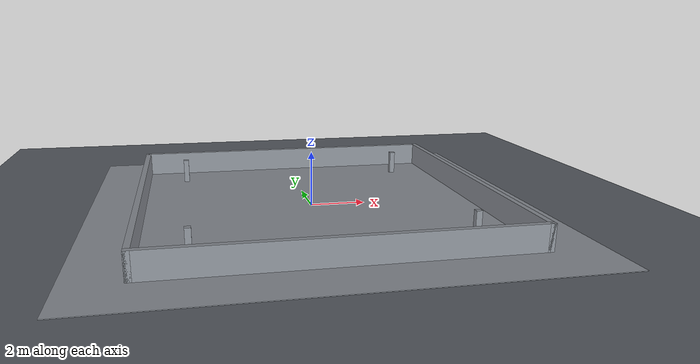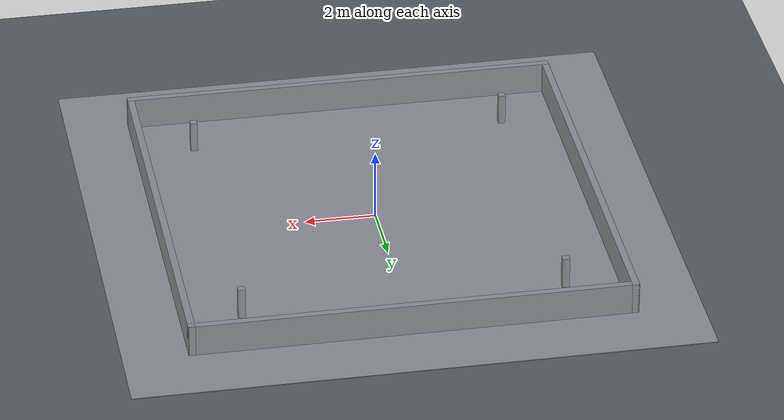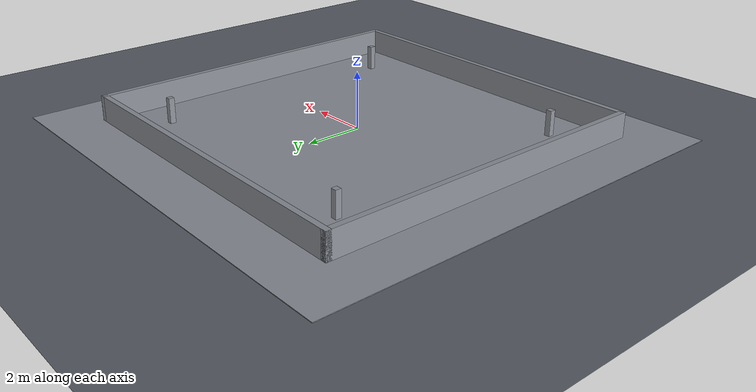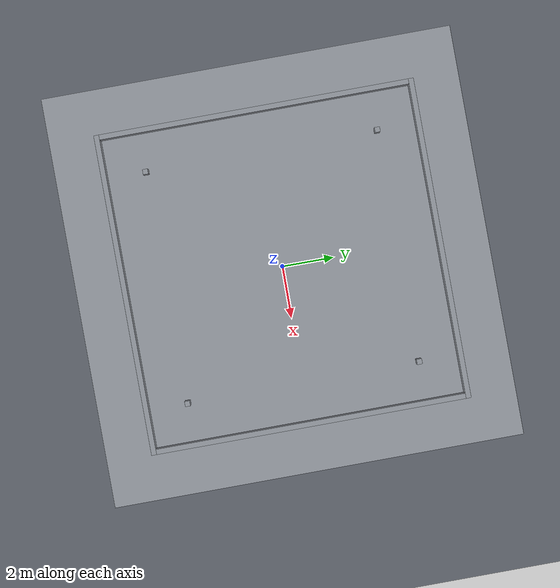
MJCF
<!-- Generated by robot_lab_maps/tools/gen_mjcf_worlds.py from
     maps/nav_empty/worlds/nav_empty.world - do not edit by hand. -->
<mujoco model="nav_empty">
  <option gravity="0 0 -9.81" />
  <compiler angle="radian" />
  <worldbody>
    <geom type="plane" size="100 100 0.1" contype="0" conaffinity="0" rgba="0.35 0.37 0.4 1" />
    <geom pos="0 0 -0.05" quat="1 0 0 0" rgba="0.55 0.57 0.6 1" type="box" size="8 8 0.05" />
    <geom pos="0 -6.1 0" quat="1 0 0 0" rgba="0.55 0.57 0.6 1" type="box" size="6.2 0.1 0.9" />
    <geom pos="0 6.1 0" quat="1 0 0 0" rgba="0.55 0.57 0.6 1" type="box" size="6.2 0.1 0.9" />
    <geom pos="-6.1 0 0" quat="1 0 0 0" rgba="0.55 0.57 0.6 1" type="box" size="0.1 6.2 0.9" />
    <geom pos="6.1 0 0" quat="1 0 0 0" rgba="0.55 0.57 0.6 1" type="box" size="0.1 6.2 0.9" />
    <geom pos="-4.5 -4.5 0" quat="1 0 0 0" rgba="0.55 0.57 0.6 1" type="box" size="0.1 0.1 0.9" />
    <geom pos="4.5 4.5 0" quat="1 0 0 0" rgba="0.55 0.57 0.6 1" type="box" size="0.1 0.1 0.9" />
    <geom pos="-4.5 4.5 0" quat="1 0 0 0" rgba="0.55 0.57 0.6 1" type="box" size="0.1 0.1 0.9" />
    <geom pos="4.5 -4.5 0" quat="1 0 0 0" rgba="0.55 0.57 0.6 1" type="box" size="0.1 0.1 0.9" />
    <light diffuse="0.8 0.8 0.8" pos="0 0 10" dir="0 0 -1" castshadow="true" />
    <light diffuse="0.3 0.3 0.3" pos="0 -6 6" dir="0 1 -1" />
  </worldbody>
</mujoco>
